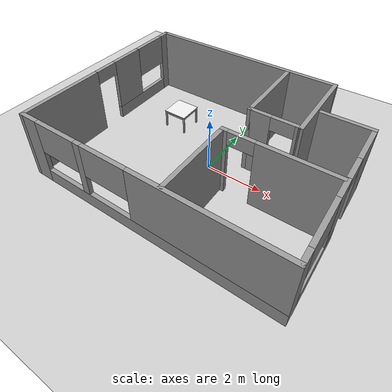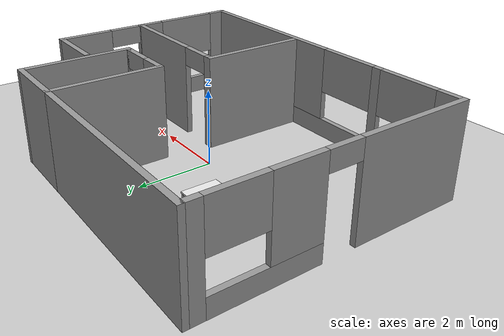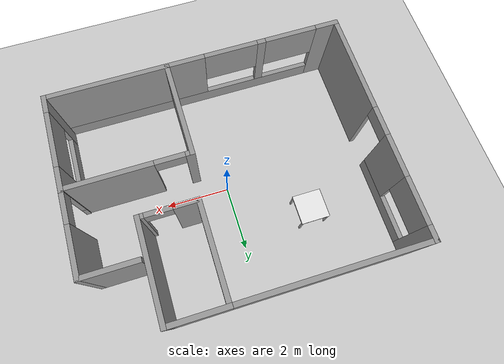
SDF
<sdf version="1.6">
 <world name="default">
  <light name="sun" type="directional">
   <pose>0 0 10 0 -0 0</pose>
   <diffuse>0.8 0.8 0.8 1</diffuse>
   <specular>0.2 0.2 0.2 1</specular>
   <attenuation>
    <range>1000</range>
    <constant>0.9</constant>
    <linear>0.01</linear>
    <quadratic>0.001</quadratic>
   </attenuation>
   <direction>-0.5 0.1 -0.9</direction>
  </light>
  <model name="ground_plane">
   <static>1</static>
   <link name="link">
    <collision name="collision">
     <geometry><plane><normal>0 0 1</normal><size>100 100</size></plane></geometry>
     <surface><friction><ode><mu>100</mu><mu2>50</mu2></ode></friction></surface>
    </collision>
    <visual name="visual">
     <cast_shadows>0</cast_shadows>
     <geometry><plane><normal>0 0 1</normal><size>100 100</size></plane></geometry>
     <material>
      <script><uri>file://media/materials/scripts/gazebo.material</uri><name>Gazebo/Grey</name></script>
     </material>
    </visual>
   </link>
  </model>
  <gravity>0 0 -9.8</gravity>
  <magnetic_field>6e-06 2.3e-05 -4.2e-05</magnetic_field>
  <atmosphere type="adiabatic"/>
  <physics name="default_physics" default="0" type="ode">
   <max_step_size>0.001</max_step_size>
   <real_time_factor>1</real_time_factor>
   <real_time_update_rate>1000</real_time_update_rate>
  </physics>
  <scene><ambient>0.4 0.4 0.4 1</ambient><background>0.7 0.7 0.7 1</background><shadows>1</shadows></scene>
  <spherical_coordinates>
   <surface_model>EARTH_WGS84</surface_model>
   <latitude_deg>0</latitude_deg>
   <longitude_deg>0</longitude_deg>
   <elevation>0</elevation>
   <heading_deg>0</heading_deg>
  </spherical_coordinates>
  <model name="small_apartment">
   <pose>-0.0394 0.040047 0 0 -0 0</pose>
   <link name="Wall_34">
    <collision name="Wall_34_Collision">
     <geometry><box><size>5.75 0.15 2.5</size></box></geometry>
     <pose>0 0 1.25 0 -0 0</pose>
    </collision>
    <visual name="Wall_34_Visual">
     <pose>0 0 1.25 0 -0 0</pose>
     <geometry><box><size>5.75 0.15 2.5</size></box></geometry>
     <material>
      <script><uri>file://media/materials/scripts/gazebo.material</uri><name>Gazebo/Grey</name></script>
      <ambient>1 1 1 1</ambient>
     </material>
     <meta><layer>0</layer></meta>
    </visual>
    <pose>-1.75 3.55 0 0 -0 0</pose>
   </link>
   <link name="Wall_35">
    <collision name="Wall_35_Collision">
     <geometry><box><size>3 0.15 2.5</size></box></geometry>
     <pose>0 0 1.25 0 -0 0</pose>
    </collision>
    <visual name="Wall_35_Visual">
     <pose>0 0 1.25 0 -0 0</pose>
     <geometry><box><size>3 0.15 2.5</size></box></geometry>
     <material>
      <script><uri>file://media/materials/scripts/gazebo.material</uri><name>Gazebo/Grey</name></script>
      <ambient>1 1 1 1</ambient>
     </material>
     <meta><layer>0</layer></meta>
    </visual>
    <pose>1.05 2.125 0 0 0 -1.5708</pose>
   </link>
   <link name="Wall_36">
    <pose>1.85 0.7 0 0 -0 0</pose>
    <visual name="Wall_36_Visual_0">
     <pose>-0.473866 0 1.25 0 -0 0</pose>
     <geometry><box><size>0.802268 0.15 2.5</size></box></geometry>
     <material>
      <script><uri>file://media/materials/scripts/gazebo.material</uri><name>Gazebo/Grey</name></script>
      <ambient>1 1 1 1</ambient>
     </material>
     <meta><layer>0</layer></meta>
    </visual>
    <collision name="Wall_36_Collision_0">
     <geometry><box><size>0.802268 0.15 2.5</size></box></geometry>
     <pose>-0.473866 0 1.25 0 -0 0</pose>
    </collision>
    <visual name="Wall_36_Visual_1">
     <pose>0.851134 0 1.25 0 -0 0</pose>
     <geometry><box><size>0.047732 0.15 2.5</size></box></geometry>
     <material>
      <script><uri>file://media/materials/scripts/gazebo.material</uri><name>Gazebo/Grey</name></script>
      <ambient>1 1 1 1</ambient>
     </material>
     <meta><layer>0</layer></meta>
    </visual>
    <collision name="Wall_36_Collision_1">
     <geometry><box><size>0.047732 0.15 2.5</size></box></geometry>
     <pose>0.851134 0 1.25 0 -0 0</pose>
    </collision>
    <visual name="Wall_36_Visual_2">
     <pose>0.377268 0 2.25 0 -0 0</pose>
     <geometry><box><size>0.9 0.15 0.5</size></box></geometry>
     <material>
      <script><uri>file://media/materials/scripts/gazebo.material</uri><name>Gazebo/Grey</name></script>
      <ambient>1 1 1 1</ambient>
     </material>
     <meta><layer>0</layer></meta>
    </visual>
    <collision name="Wall_36_Collision_2">
     <geometry><box><size>0.9 0.15 0.5</size></box></geometry>
     <pose>0.377268 0 2.25 0 -0 0</pose>
    </collision>
   </link>
   <link name="Wall_37">
    <collision name="Wall_37_Collision">
     <geometry><box><size>0.25 0.15 2.5</size></box></geometry>
     <pose>0 0 1.25 0 -0 0</pose>
    </collision>
    <visual name="Wall_37_Visual">
     <pose>0 0 1.25 0 -0 0</pose>
     <geometry><box><size>0.25 0.15 2.5</size></box></geometry>
     <material>
      <script><uri>file://media/materials/scripts/gazebo.material</uri><name>Gazebo/Grey</name></script>
      <ambient>1 1 1 1</ambient>
     </material>
     <meta><layer>0</layer></meta>
    </visual>
    <pose>2.7 0.7 0 0 -0 0</pose>
   </link>
   <link name="Wall_38">
    <collision name="Wall_38_Collision">
     <geometry><box><size>3 0.15 2.5</size></box></geometry>
     <pose>0 0 1.25 0 -0 0</pose>
    </collision>
    <visual name="Wall_38_Visual">
     <pose>0 0 1.25 0 -0 0</pose>
     <geometry><box><size>3 0.15 2.5</size></box></geometry>
     <material>
      <script><uri>file://media/materials/scripts/gazebo.material</uri><name>Gazebo/Grey</name></script>
      <ambient>1 1 1 1</ambient>
     </material>
     <meta><layer>0</layer></meta>
    </visual>
    <pose>2.75 2.125 0 0 -0 1.5708</pose>
   </link>
   <link name="Wall_39">
    <collision name="Wall_39_Collision">
     <geometry><box><size>1.85 0.15 2.5</size></box></geometry>
     <pose>0 0 1.25 0 -0 0</pose>
    </collision>
    <visual name="Wall_39_Visual">
     <pose>0 0 1.25 0 -0 0</pose>
     <geometry><box><size>1.85 0.15 2.5</size></box></geometry>
     <material>
      <script><uri>file://media/materials/scripts/gazebo.material</uri><name>Gazebo/Grey</name></script>
      <ambient>1 1 1 1</ambient>
     </material>
     <meta><layer>0</layer></meta>
    </visual>
    <pose>1.9 3.55 0 0 -0 3.14159</pose>
   </link>
   <link name="Wall_41">
    <pose>-4.55 0 0 0 0 -1.5708</pose>
    <visual name="Wall_41_Visual_0">
     <pose>-3.38119 0 1.25 0 -0 0</pose>
     <geometry><box><size>0.487612 0.15 2.5</size></box></geometry>
     <material>
      <script><uri>file://media/materials/scripts/gazebo.material</uri><name>Gazebo/Grey</name></script>
      <ambient>1 1 1 1</ambient>
     </material>
     <meta><layer>0</layer></meta>
    </visual>
    <collision name="Wall_41_Collision_0">
     <geometry><box><size>0.487612 0.15 2.5</size></box></geometry>
     <pose>-3.38119 0 1.25 0 -0 0</pose>
    </collision>
    <visual name="Wall_41_Visual_1">
     <pose>2.04508 0 1.25 0 -0 0</pose>
     <geometry><box><size>3.15985 0.15 2.5</size></box></geometry>
     <material>
      <script><uri>file://media/materials/scripts/gazebo.material</uri><name>Gazebo/Grey</name></script>
      <ambient>1 1 1 1</ambient>
     </material>
     <meta><layer>0</layer></meta>
    </visual>
    <collision name="Wall_41_Collision_1">
     <geometry><box><size>3.15985 0.15 2.5</size></box></geometry>
     <pose>2.04508 0 1.25 0 -0 0</pose>
    </collision>
    <visual name="Wall_41_Visual_2">
     <pose>-1.78612 0 0.25 0 -0 0</pose>
     <geometry><box><size>2.70254 0.15 0.5</size></box></geometry>
     <material>
      <script><uri>file://media/materials/scripts/gazebo.material</uri><name>Gazebo/Grey</name></script>
      <ambient>1 1 1 1</ambient>
     </material>
     <meta><layer>0</layer></meta>
    </visual>
    <collision name="Wall_41_Collision_2">
     <geometry><box><size>2.70254 0.15 0.5</size></box></geometry>
     <pose>-1.78612 0 0.25 0 -0 0</pose>
    </collision>
    <visual name="Wall_41_Visual_3">
     <pose>-1.08542 0 1.5 0 -0 0</pose>
     <geometry><box><size>1.30115 0.15 2</size></box></geometry>
     <material>
      <script><uri>file://media/materials/scripts/gazebo.material</uri><name>Gazebo/Grey</name></script>
      <ambient>1 1 1 1</ambient>
     </material>
     <meta><layer>0</layer></meta>
    </visual>
    <collision name="Wall_41_Collision_3">
     <geometry><box><size>1.30115 0.15 2</size></box></geometry>
     <pose>-1.08542 0 1.5 0 -0 0</pose>
    </collision>
    <visual name="Wall_41_Visual_4">
     <pose>-2.43669 0 1.9 0 -0 0</pose>
     <geometry><box><size>1.4014 0.15 1.2</size></box></geometry>
     <material>
      <script><uri>file://media/materials/scripts/gazebo.material</uri><name>Gazebo/Grey</name></script>
      <ambient>1 1 1 1</ambient>
     </material>
     <meta><layer>0</layer></meta>
    </visual>
    <collision name="Wall_41_Collision_4">
     <geometry><box><size>1.4014 0.15 1.2</size></box></geometry>
     <pose>-2.43669 0 1.9 0 -0 0</pose>
    </collision>
    <visual name="Wall_41_Visual_5">
     <pose>0.015154 0 2.25 0 -0 0</pose>
     <geometry><box><size>0.9 0.15 0.5</size></box></geometry>
     <material>
      <script><uri>file://media/materials/scripts/gazebo.material</uri><name>Gazebo/Grey</name></script>
      <ambient>1 1 1 1</ambient>
     </material>
     <meta><layer>0</layer></meta>
    </visual>
    <collision name="Wall_41_Collision_5">
     <geometry><box><size>0.9 0.15 0.5</size></box></geometry>
     <pose>0.015154 0 2.25 0 -0 0</pose>
    </collision>
   </link>
   <link name="Wall_42">
    <pose>0 -3.55 0 0 -0 0</pose>
    <visual name="Wall_42_Visual_0">
     <pose>-4.2555 0 1.25 0 -0 0</pose>
     <geometry><box><size>0.739008 0.15 2.5</size></box></geometry>
     <material>
      <script><uri>file://media/materials/scripts/gazebo.material</uri><name>Gazebo/Grey</name></script>
      <ambient>1 1 1 1</ambient>
     </material>
     <meta><layer>0</layer></meta>
    </visual>
    <collision name="Wall_42_Collision_0">
     <geometry><box><size>0.739008 0.15 2.5</size></box></geometry>
     <pose>-4.2555 0 1.25 0 -0 0</pose>
    </collision>
    <visual name="Wall_42_Visual_1">
     <pose>0.369504 0 0.25 0 -0 0</pose>
     <geometry><box><size>8.51099 0.15 0.5</size></box></geometry>
     <material>
      <script><uri>file://media/materials/scripts/gazebo.material</uri><name>Gazebo/Grey</name></script>
      <ambient>1 1 1 1</ambient>
     </material>
     <meta><layer>0</layer></meta>
    </visual>
    <collision name="Wall_42_Collision_1">
     <geometry><box><size>8.51099 0.15 0.5</size></box></geometry>
     <pose>0.369504 0 0.25 0 -0 0</pose>
    </collision>
    <visual name="Wall_42_Visual_2">
     <pose>-2.12129 0 1.5 0 -0 0</pose>
     <geometry><box><size>0.264008 0.15 2</size></box></geometry>
     <material>
      <script><uri>file://media/materials/scripts/gazebo.material</uri><name>Gazebo/Grey</name></script>
      <ambient>1 1 1 1</ambient>
     </material>
     <meta><layer>0</layer></meta>
    </visual>
    <collision name="Wall_42_Collision_2">
     <geometry><box><size>0.264008 0.15 2</size></box></geometry>
     <pose>-2.12129 0 1.5 0 -0 0</pose>
    </collision>
    <visual name="Wall_42_Visual_3">
     <pose>2.15734 0 1.5 0 -0 0</pose>
     <geometry><box><size>4.93532 0.15 2</size></box></geometry>
     <material>
      <script><uri>file://media/materials/scripts/gazebo.material</uri><name>Gazebo/Grey</name></script>
      <ambient>1 1 1 1</ambient>
     </material>
     <meta><layer>0</layer></meta>
    </visual>
    <collision name="Wall_42_Collision_3">
     <geometry><box><size>4.93532 0.15 2</size></box></geometry>
     <pose>2.15734 0 1.5 0 -0 0</pose>
    </collision>
    <visual name="Wall_42_Visual_4">
     <pose>-3.06964 0 1.9 0 -0 0</pose>
     <geometry><box><size>1.6327 0.15 1.2</size></box></geometry>
     <material>
      <script><uri>file://media/materials/scripts/gazebo.material</uri><name>Gazebo/Grey</name></script>
      <ambient>1 1 1 1</ambient>
     </material>
     <meta><layer>0</layer></meta>
    </visual>
    <collision name="Wall_42_Collision_4">
     <geometry><box><size>1.6327 0.15 1.2</size></box></geometry>
     <pose>-3.06964 0 1.9 0 -0 0</pose>
    </collision>
    <visual name="Wall_42_Visual_5">
     <pose>-1.1498 0 1.9 0 -0 0</pose>
     <geometry><box><size>1.67896 0.15 1.2</size></box></geometry>
     <material>
      <script><uri>file://media/materials/scripts/gazebo.material</uri><name>Gazebo/Grey</name></script>
      <ambient>1 1 1 1</ambient>
     </material>
     <meta><layer>0</layer></meta>
    </visual>
    <collision name="Wall_42_Collision_5">
     <geometry><box><size>1.67896 0.15 1.2</size></box></geometry>
     <pose>-1.1498 0 1.9 0 -0 0</pose>
    </collision>
   </link>
   <link name="Wall_43">
    <pose>4.55 -0.875 0 0 -0 1.5708</pose>
    <visual name="Wall_43_Visual_0">
     <pose>-2.46352 0 1.25 0 -0 0</pose>
     <geometry><box><size>0.572956 0.15 2.5</size></box></geometry>
     <material>
      <script><uri>file://media/materials/scripts/gazebo.material</uri><name>Gazebo/Grey</name></script>
      <ambient>1 1 1 1</ambient>
     </material>
     <meta><layer>0</layer></meta>
    </visual>
    <collision name="Wall_43_Collision_0">
     <geometry><box><size>0.572956 0.15 2.5</size></box></geometry>
     <pose>-2.46352 0 1.25 0 -0 0</pose>
    </collision>
    <visual name="Wall_43_Visual_1">
     <pose>1.98366 0 1.25 0 -0 0</pose>
     <geometry><box><size>1.53268 0.15 2.5</size></box></geometry>
     <material>
      <script><uri>file://media/materials/scripts/gazebo.material</uri><name>Gazebo/Grey</name></script>
      <ambient>1 1 1 1</ambient>
     </material>
     <meta><layer>0</layer></meta>
    </visual>
    <collision name="Wall_43_Collision_1">
     <geometry><box><size>1.53268 0.15 2.5</size></box></geometry>
     <pose>1.98366 0 1.25 0 -0 0</pose>
    </collision>
    <visual name="Wall_43_Visual_2">
     <pose>-0.92986 0 0.25 0 -0 0</pose>
     <geometry><box><size>2.49437 0.15 0.5</size></box></geometry>
     <material>
      <script><uri>file://media/materials/scripts/gazebo.material</uri><name>Gazebo/Grey</name></script>
      <ambient>1 1 1 1</ambient>
     </material>
     <meta><layer>0</layer></meta>
    </visual>
    <collision name="Wall_43_Collision_2">
     <geometry><box><size>2.49437 0.15 0.5</size></box></geometry>
     <pose>-0.92986 0 0.25 0 -0 0</pose>
    </collision>
    <visual name="Wall_43_Visual_3">
     <pose>-0.067248 0 1.5 0 -0 0</pose>
     <geometry><box><size>0.769143 0.15 2</size></box></geometry>
     <material>
      <script><uri>file://media/materials/scripts/gazebo.material</uri><name>Gazebo/Grey</name></script>
      <ambient>1 1 1 1</ambient>
     </material>
     <meta><layer>0</layer></meta>
    </visual>
    <collision name="Wall_43_Collision_3">
     <geometry><box><size>0.769143 0.15 2</size></box></geometry>
     <pose>-0.067248 0 1.5 0 -0 0</pose>
    </collision>
    <visual name="Wall_43_Visual_4">
     <pose>-1.31443 0 1.9 0 -0 0</pose>
     <geometry><box><size>1.72522 0.15 1.2</size></box></geometry>
     <material>
      <script><uri>file://media/materials/scripts/gazebo.material</uri><name>Gazebo/Grey</name></script>
      <ambient>1 1 1 1</ambient>
     </material>
     <meta><layer>0</layer></meta>
    </visual>
    <collision name="Wall_43_Collision_4">
     <geometry><box><size>1.72522 0.15 1.2</size></box></geometry>
     <pose>-1.31443 0 1.9 0 -0 0</pose>
    </collision>
    <visual name="Wall_43_Visual_5">
     <pose>0.767323 0 2.25 0 -0 0</pose>
     <geometry><box><size>0.9 0.15 0.5</size></box></geometry>
     <material>
      <script><uri>file://media/materials/scripts/gazebo.material</uri><name>Gazebo/Grey</name></script>
      <ambient>1 1 1 1</ambient>
     </material>
     <meta><layer>0</layer></meta>
    </visual>
    <collision name="Wall_43_Collision_5">
     <geometry><box><size>0.9 0.15 0.5</size></box></geometry>
     <pose>0.767323 0 2.25 0 -0 0</pose>
    </collision>
   </link>
   <link name="Wall_44">
    <collision name="Wall_44_Collision">
     <geometry><box><size>1.75 0.15 2.5</size></box></geometry>
     <pose>0 0 1.25 0 -0 0</pose>
    </collision>
    <visual name="Wall_44_Visual">
     <pose>0 0 1.25 0 -0 0</pose>
     <geometry><box><size>1.75 0.15 2.5</size></box></geometry>
     <material>
      <script><uri>file://media/materials/scripts/gazebo.material</uri><name>Gazebo/Grey</name></script>
      <ambient>1 1 1 1</ambient>
     </material>
     <meta><layer>0</layer></meta>
    </visual>
    <pose>3.75 1.8 0 0 -0 3.14159</pose>
   </link>
   <link name="Wall_46">
    <collision name="Wall_46_Collision">
     <geometry><box><size>3 0.15 2.5</size></box></geometry>
     <pose>0 0 1.25 0 -0 0</pose>
    </collision>
    <visual name="Wall_46_Visual">
     <pose>0 0 1.25 0 -0 0</pose>
     <geometry><box><size>3 0.15 2.5</size></box></geometry>
     <material>
      <script><uri>file://media/materials/scripts/gazebo.material</uri><name>Gazebo/Grey</name></script>
      <ambient>1 1 1 1</ambient>
     </material>
     <meta><layer>0</layer></meta>
    </visual>
    <pose>0.862562 -2.08288 0 0 -0 1.5708</pose>
   </link>
   <link name="Wall_47">
    <pose>2.66256 -0.657876 0 0 -0 0</pose>
    <visual name="Wall_47_Visual_0">
     <pose>-1.73867 0 1.25 0 -0 0</pose>
     <geometry><box><size>0.272657 0.15 2.5</size></box></geometry>
     <material>
      <script><uri>file://media/materials/scripts/gazebo.material</uri><name>Gazebo/Grey</name></script>
      <ambient>1 1 1 1</ambient>
     </material>
     <meta><layer>0</layer></meta>
    </visual>
    <collision name="Wall_47_Collision_0">
     <geometry><box><size>0.272657 0.15 2.5</size></box></geometry>
     <pose>-1.73867 0 1.25 0 -0 0</pose>
    </collision>
    <visual name="Wall_47_Visual_1">
     <pose>0.586329 0 1.25 0 -0 0</pose>
     <geometry><box><size>2.57734 0.15 2.5</size></box></geometry>
     <material>
      <script><uri>file://media/materials/scripts/gazebo.material</uri><name>Gazebo/Grey</name></script>
      <ambient>1 1 1 1</ambient>
     </material>
     <meta><layer>0</layer></meta>
    </visual>
    <collision name="Wall_47_Collision_1">
     <geometry><box><size>2.57734 0.15 2.5</size></box></geometry>
     <pose>0.586329 0 1.25 0 -0 0</pose>
    </collision>
    <visual name="Wall_47_Visual_2">
     <pose>-1.15234 0 2.25 0 -0 0</pose>
     <geometry><box><size>0.9 0.15 0.5</size></box></geometry>
     <material>
      <script><uri>file://media/materials/scripts/gazebo.material</uri><name>Gazebo/Grey</name></script>
      <ambient>1 1 1 1</ambient>
     </material>
     <meta><layer>0</layer></meta>
    </visual>
    <collision name="Wall_47_Collision_2">
     <geometry><box><size>0.9 0.15 0.5</size></box></geometry>
     <pose>-1.15234 0 2.25 0 -0 0</pose>
    </collision>
   </link>
   <static>1</static>
  </model>
  <model name="table_ikea_bjursta">
   <link name="table_top_link">
    <inertial>
     <pose>0 0 0.338095 0 -0 0</pose>
     <mass>21</mass>
     <inertia><ixx>3.4229</ixx><ixy>0</ixy><ixz>0</ixz><iyy>3.4229</iyy><iyz>0</iyz><izz>4.82335</izz></inertia>
    </inertial>
    <visual name="table_top_link_visual">
     <pose>0 0 0.72 0 -0 0</pose>
     <geometry><box><size>0.9 0.9 0.04</size></box></geometry>
     <material>
      <script><name>Gazebo/White</name><uri>file://media/materials/scripts/gazebo.material</uri></script>
      <ambient>1 1 1 1</ambient>
      <diffuse>1 1 1 1</diffuse>
      <specular>0 0 0 1</specular>
      <emissive>0 0 0 1</emissive>
     </material>
    </visual>
    <visual name="table_top_link_fixed_joint_lump__lath_left_back_link_visual_1">
     <pose>-0.43 0 0.665 0 -0 0</pose>
     <geometry><box><size>0.02 0.77 0.07</size></box></geometry>
    </visual>
    <visual name="table_top_link_fixed_joint_lump__lath_left_front_link_visual_2">
     <pose>0.43 0 0.665 0 -0 0</pose>
     <geometry><box><size>0.02 0.77 0.07</size></box></geometry>
    </visual>
    <visual name="table_top_link_fixed_joint_lump__lath_right_back_link_visual_3">
     <pose>0 -0.43 0.665 0 -0 0</pose>
     <geometry><box><size>0.77 0.02 0.07</size></box></geometry>
    </visual>
    <visual name="table_top_link_fixed_joint_lump__lath_right_front_link_visual_4">
     <pose>0 0.43 0.665 0 -0 0</pose>
     <geometry><box><size>0.77 0.02 0.07</size></box></geometry>
    </visual>
    <visual name="table_top_link_fixed_joint_lump__leg_left_back_link_visual_5">
     <pose>-0.4125 0.4125 0.37 0 -0 0</pose>
     <geometry><box><size>0.055 0.055 0.7</size></box></geometry>
    </visual>
    <visual name="table_top_link_fixed_joint_lump__leg_left_front_link_visual_6">
     <pose>0.4125 0.4125 0.37 0 -0 0</pose>
     <geometry><box><size>0.055 0.055 0.7</size></box></geometry>
    </visual>
    <visual name="table_top_link_fixed_joint_lump__leg_right_back_link_visual_7">
     <pose>-0.4125 -0.4125 0.37 0 -0 0</pose>
     <geometry><box><size>0.055 0.055 0.7</size></box></geometry>
    </visual>
    <visual name="table_top_link_fixed_joint_lump__leg_right_front_link_visual_8">
     <pose>0.4125 -0.4125 0.37 0 -0 0</pose>
     <geometry><box><size>0.055 0.055 0.7</size></box></geometry>
    </visual>
    <collision name="table_top_link_collision">
     <pose>0 0 0.72 0 -0 0</pose>
     <geometry><box><size>0.9 0.9 0.04</size></box></geometry>
     <surface>
      <friction>
       <ode><mu>50</mu><mu2>50</mu2><fdir1>0 0 0</fdir1><slip1>0</slip1><slip2>0</slip2></ode>
       <torsional>
        <coefficient>1</coefficient>
        <patch_radius>0</patch_radius>
        <surface_radius>0</surface_radius>
        <use_patch_radius>1</use_patch_radius>
        <ode><slip>0</slip></ode>
       </torsional>
      </friction>
      <bounce><restitution_coefficient>0</restitution_coefficient><threshold>1e+06</threshold></bounce>
      <contact>
       <collide_without_contact>0</collide_without_contact>
       <collide_without_contact_bitmask>1</collide_without_contact_bitmask>
       <collide_bitmask>1</collide_bitmask>
       <ode>
        <soft_cfm>0</soft_cfm>
        <soft_erp>0.2</soft_erp>
        <kp>1e+06</kp>
        <kd>1</kd>
        <max_vel>0.01</max_vel>
        <min_depth>0</min_depth>
       </ode>
       <bullet>
        <split_impulse>1</split_impulse>
        <split_impulse_penetration_threshold>-0.01</split_impulse_penetration_threshold>
        <soft_cfm>0</soft_cfm>
        <soft_erp>0.2</soft_erp>
        <kp>1e+06</kp>
        <kd>1</kd>
       </bullet>
      </contact>
     </surface>
    </collision>
    <collision name="table_top_link_fixed_joint_lump__lath_left_back_link_collision_1">
     <pose>-0.43 0 0.665 0 -0 0</pose>
     <geometry><box><size>0.02 0.77 0.07</size></box></geometry>
     <surface>
      <friction>
       <ode><mu>1</mu><mu2>1</mu2><fdir1>0 0 0</fdir1><slip1>0</slip1><slip2>0</slip2></ode>
       <torsional>
        <coefficient>1</coefficient>
        <patch_radius>0</patch_radius>
        <surface_radius>0</surface_radius>
        <use_patch_radius>1</use_patch_radius>
        <ode><slip>0</slip></ode>
       </torsional>
      </friction>
      <bounce><restitution_coefficient>0</restitution_coefficient><threshold>1e+06</threshold></bounce>
      <contact>
       <collide_without_contact>0</collide_without_contact>
       <collide_without_contact_bitmask>1</collide_without_contact_bitmask>
       <collide_bitmask>1</collide_bitmask>
       <ode>
        <soft_cfm>0</soft_cfm>
        <soft_erp>0.2</soft_erp>
        <kp>1e+13</kp>
        <kd>1</kd>
        <max_vel>0.01</max_vel>
        <min_depth>0</min_depth>
       </ode>
       <bullet>
        <split_impulse>1</split_impulse>
        <split_impulse_penetration_threshold>-0.01</split_impulse_penetration_threshold>
        <soft_cfm>0</soft_cfm>
        <soft_erp>0.2</soft_erp>
        <kp>1e+13</kp>
        <kd>1</kd>
       </bullet>
      </contact>
     </surface>
    </collision>
    <collision name="table_top_link_fixed_joint_lump__lath_left_front_link_collision_2">
     <pose>0.43 0 0.665 0 -0 0</pose>
     <geometry><box><size>0.02 0.77 0.07</size></box></geometry>
     <surface>
      <friction>
       <ode><mu>1</mu><mu2>1</mu2><fdir1>0 0 0</fdir1><slip1>0</slip1><slip2>0</slip2></ode>
       <torsional>
        <coefficient>1</coefficient>
        <patch_radius>0</patch_radius>
        <surface_radius>0</surface_radius>
        <use_patch_radius>1</use_patch_radius>
        <ode><slip>0</slip></ode>
       </torsional>
      </friction>
      <bounce><restitution_coefficient>0</restitution_coefficient><threshold>1e+06</threshold></bounce>
      <contact>
       <collide_without_contact>0</collide_without_contact>
       <collide_without_contact_bitmask>1</collide_without_contact_bitmask>
       <collide_bitmask>1</collide_bitmask>
       <ode>
        <soft_cfm>0</soft_cfm>
        <soft_erp>0.2</soft_erp>
        <kp>1e+13</kp>
        <kd>1</kd>
        <max_vel>0.01</max_vel>
        <min_depth>0</min_depth>
       </ode>
       <bullet>
        <split_impulse>1</split_impulse>
        <split_impulse_penetration_threshold>-0.01</split_impulse_penetration_threshold>
        <soft_cfm>0</soft_cfm>
        <soft_erp>0.2</soft_erp>
        <kp>1e+13</kp>
        <kd>1</kd>
       </bullet>
      </contact>
     </surface>
    </collision>
    <collision name="table_top_link_fixed_joint_lump__lath_right_front_link_collision_4">
     <pose>0 0.43 0.665 0 -0 0</pose>
     <geometry><box><size>0.77 0.02 0.07</size></box></geometry>
     <surface>
      <friction>
       <ode><mu>1</mu><mu2>1</mu2><fdir1>0 0 0</fdir1><slip1>0</slip1><slip2>0</slip2></ode>
       <torsional>
        <coefficient>1</coefficient>
        <patch_radius>0</patch_radius>
        <surface_radius>0</surface_radius>
        <use_patch_radius>1</use_patch_radius>
        <ode><slip>0</slip></ode>
       </torsional>
      </friction>
      <bounce><restitution_coefficient>0</restitution_coefficient><threshold>1e+06</threshold></bounce>
      <contact>
       <collide_without_contact>0</collide_without_contact>
       <collide_without_contact_bitmask>1</collide_without_contact_bitmask>
       <collide_bitmask>1</collide_bitmask>
       <ode>
        <soft_cfm>0</soft_cfm>
        <soft_erp>0.2</soft_erp>
        <kp>1e+13</kp>
        <kd>1</kd>
        <max_vel>0.01</max_vel>
        <min_depth>0</min_depth>
       </ode>
       <bullet>
        <split_impulse>1</split_impulse>
        <split_impulse_penetration_threshold>-0.01</split_impulse_penetration_threshold>
        <soft_cfm>0</soft_cfm>
        <soft_erp>0.2</soft_erp>
        <kp>1e+13</kp>
        <kd>1</kd>
       </bullet>
      </contact>
     </surface>
    </collision>
    <collision name="table_top_link_fixed_joint_lump__lath_right_back_link_collision_3">
     <pose>0 -0.43 0.665 0 -0 0</pose>
     <geometry><box><size>0.77 0.02 0.07</size></box></geometry>
     <surface>
      <friction>
       <ode><mu>1</mu><mu2>1</mu2><fdir1>0 0 0</fdir1><slip1>0</slip1><slip2>0</slip2></ode>
       <torsional>
        <coefficient>1</coefficient>
        <patch_radius>0</patch_radius>
        <surface_radius>0</surface_radius>
        <use_patch_radius>1</use_patch_radius>
        <ode><slip>0</slip></ode>
       </torsional>
      </friction>
      <bounce><restitution_coefficient>0</restitution_coefficient><threshold>1e+06</threshold></bounce>
      <contact>
       <collide_without_contact>0</collide_without_contact>
       <collide_without_contact_bitmask>1</collide_without_contact_bitmask>
       <collide_bitmask>1</collide_bitmask>
       <ode>
        <soft_cfm>0</soft_cfm>
        <soft_erp>0.2</soft_erp>
        <kp>1e+13</kp>
        <kd>1</kd>
        <max_vel>0.01</max_vel>
        <min_depth>0</min_depth>
       </ode>
       <bullet>
        <split_impulse>1</split_impulse>
        <split_impulse_penetration_threshold>-0.01</split_impulse_penetration_threshold>
        <soft_cfm>0</soft_cfm>
        <soft_erp>0.2</soft_erp>
        <kp>1e+13</kp>
        <kd>1</kd>
       </bullet>
      </contact>
     </surface>
    </collision>
    <collision name="table_top_link_fixed_joint_lump__leg_left_back_link_collision_5">
     <pose>-0.4125 0.4125 0.37 0 -0 0</pose>
     <geometry><box><size>0.055 0.055 0.7</size></box></geometry>
     <surface>
      <friction>
       <ode><mu>1</mu><mu2>1</mu2><fdir1>0 0 0</fdir1><slip1>0</slip1><slip2>0</slip2></ode>
       <torsional>
        <coefficient>1</coefficient>
        <patch_radius>0</patch_radius>
        <surface_radius>0</surface_radius>
        <use_patch_radius>1</use_patch_radius>
        <ode><slip>0</slip></ode>
       </torsional>
      </friction>
      <bounce><restitution_coefficient>0</restitution_coefficient><threshold>1e+06</threshold></bounce>
      <contact>
       <collide_without_contact>0</collide_without_contact>
       <collide_without_contact_bitmask>1</collide_without_contact_bitmask>
       <collide_bitmask>1</collide_bitmask>
       <ode>
        <soft_cfm>0</soft_cfm>
        <soft_erp>0.2</soft_erp>
        <kp>1e+13</kp>
        <kd>1</kd>
        <max_vel>0.01</max_vel>
        <min_depth>0</min_depth>
       </ode>
       <bullet>
        <split_impulse>1</split_impulse>
        <split_impulse_penetration_threshold>-0.01</split_impulse_penetration_threshold>
        <soft_cfm>0</soft_cfm>
        <soft_erp>0.2</soft_erp>
        <kp>1e+13</kp>
        <kd>1</kd>
       </bullet>
      </contact>
     </surface>
    </collision>
    <collision name="table_top_link_fixed_joint_lump__leg_left_front_link_collision_6">
     <pose>0.4125 0.4125 0.37 0 -0 0</pose>
     <geometry><box><size>0.055 0.055 0.7</size></box></geometry>
     <surface>
      <friction>
       <ode><mu>1</mu><mu2>1</mu2><fdir1>0 0 0</fdir1><slip1>0</slip1><slip2>0</slip2></ode>
       <torsional>
        <coefficient>1</coefficient>
        <patch_radius>0</patch_radius>
        <surface_radius>0</surface_radius>
        <use_patch_radius>1</use_patch_radius>
        <ode><slip>0</slip></ode>
       </torsional>
      </friction>
      <bounce><restitution_coefficient>0</restitution_coefficient><threshold>1e+06</threshold></bounce>
      <contact>
       <collide_without_contact>0</collide_without_contact>
       <collide_without_contact_bitmask>1</collide_without_contact_bitmask>
       <collide_bitmask>1</collide_bitmask>
       <ode>
        <soft_cfm>0</soft_cfm>
        <soft_erp>0.2</soft_erp>
        <kp>1e+13</kp>
        <kd>1</kd>
        <max_vel>0.01</max_vel>
        <min_depth>0</min_depth>
       </ode>
       <bullet>
        <split_impulse>1</split_impulse>
        <split_impulse_penetration_threshold>-0.01</split_impulse_penetration_threshold>
        <soft_cfm>0</soft_cfm>
        <soft_erp>0.2</soft_erp>
        <kp>1e+13</kp>
        <kd>1</kd>
       </bullet>
      </contact>
     </surface>
    </collision>
    <collision name="table_top_link_fixed_joint_lump__leg_right_back_link_collision_7">
     <pose>-0.4125 -0.4125 0.37 0 -0 0</pose>
     <geometry><box><size>0.055 0.055 0.7</size></box></geometry>
     <surface>
      <friction>
       <ode><mu>1</mu><mu2>1</mu2><fdir1>0 0 0</fdir1><slip1>0</slip1><slip2>0</slip2></ode>
       <torsional>
        <coefficient>1</coefficient>
        <patch_radius>0</patch_radius>
        <surface_radius>0</surface_radius>
        <use_patch_radius>1</use_patch_radius>
        <ode><slip>0</slip></ode>
       </torsional>
      </friction>
      <bounce><restitution_coefficient>0</restitution_coefficient><threshold>1e+06</threshold></bounce>
      <contact>
       <collide_without_contact>0</collide_without_contact>
       <collide_without_contact_bitmask>1</collide_without_contact_bitmask>
       <collide_bitmask>1</collide_bitmask>
       <ode>
        <soft_cfm>0</soft_cfm>
        <soft_erp>0.2</soft_erp>
        <kp>1e+13</kp>
        <kd>1</kd>
        <max_vel>0.01</max_vel>
        <min_depth>0</min_depth>
       </ode>
       <bullet>
        <split_impulse>1</split_impulse>
        <split_impulse_penetration_threshold>-0.01</split_impulse_penetration_threshold>
        <soft_cfm>0</soft_cfm>
        <soft_erp>0.2</soft_erp>
        <kp>1e+13</kp>
        <kd>1</kd>
       </bullet>
      </contact>
     </surface>
    </collision>
    <collision name="table_top_link_fixed_joint_lump__leg_right_front_link_collision_8">
     <pose>0.4125 -0.4125 0.37 0 -0 0</pose>
     <geometry><box><size>0.055 0.055 0.7</size></box></geometry>
     <surface>
      <friction>
       <ode><mu>1</mu><mu2>1</mu2><fdir1>0 0 0</fdir1><slip1>0</slip1><slip2>0</slip2></ode>
       <torsional>
        <coefficient>1</coefficient>
        <patch_radius>0</patch_radius>
        <surface_radius>0</surface_radius>
        <use_patch_radius>1</use_patch_radius>
        <ode><slip>0</slip></ode>
       </torsional>
      </friction>
      <bounce><restitution_coefficient>0</restitution_coefficient><threshold>1e+06</threshold></bounce>
      <contact>
       <collide_without_contact>0</collide_without_contact>
       <collide_without_contact_bitmask>1</collide_without_contact_bitmask>
       <collide_bitmask>1</collide_bitmask>
       <ode>
        <soft_cfm>0</soft_cfm>
        <soft_erp>0.2</soft_erp>
        <kp>1e+13</kp>
        <kd>1</kd>
        <max_vel>0.01</max_vel>
        <min_depth>0</min_depth>
       </ode>
       <bullet>
        <split_impulse>1</split_impulse>
        <split_impulse_penetration_threshold>-0.01</split_impulse_penetration_threshold>
        <soft_cfm>0</soft_cfm>
        <soft_erp>0.2</soft_erp>
        <kp>1e+13</kp>
        <kd>1</kd>
       </bullet>
      </contact>
     </surface>
    </collision>
   </link>
   <static>0</static>
   <pose>-2.25201 1.47208 0 0 -0 0</pose>
  </model>
 </world>
</sdf>
